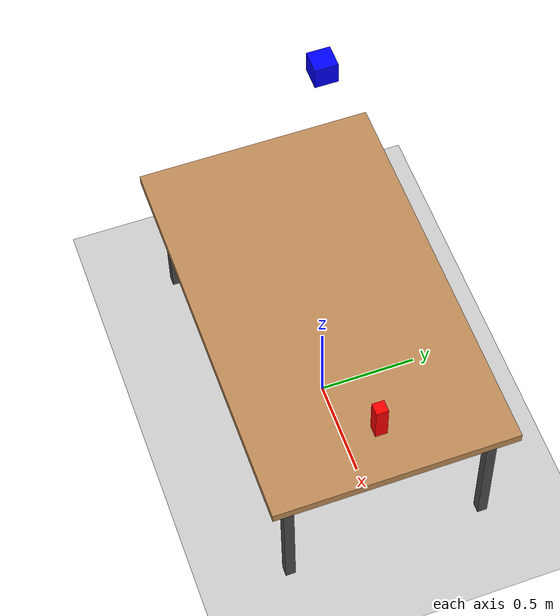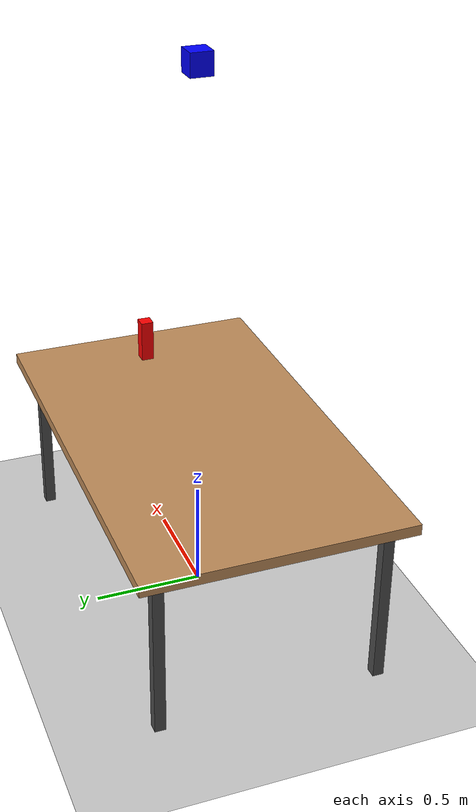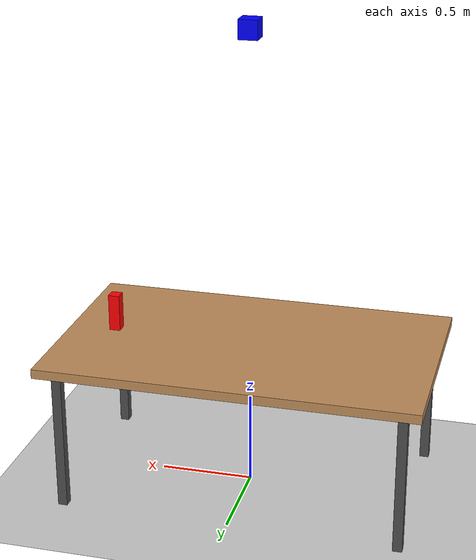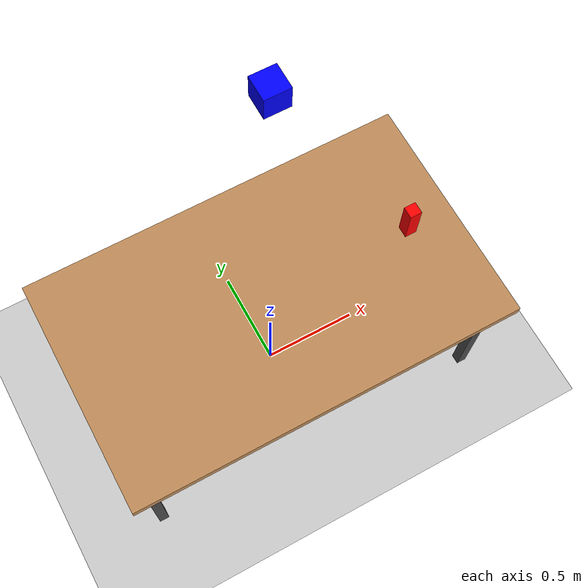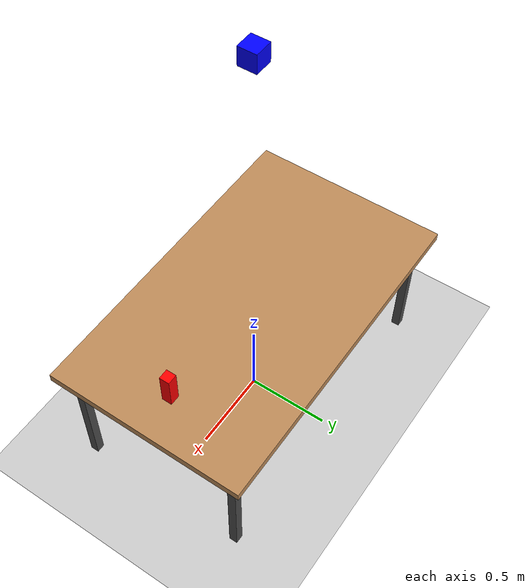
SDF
<?xml version="1.0" ?>
<sdf version="1.9">

  <world name="camera_world">

    <!-- Physics -->
    <physics type="ode">
      <max_step_size>0.001</max_step_size>
      <real_time_factor>1.0</real_time_factor>
    </physics>

    <!-- Core systems -->
    <plugin
      filename="gz-sim-physics-system"
      name="gz::sim::systems::Physics">
    </plugin>

    <plugin
      filename="gz-sim-user-commands-system"
      name="gz::sim::systems::UserCommands">
    </plugin>

    <plugin
      filename="gz-sim-scene-broadcaster-system"
      name="gz::sim::systems::SceneBroadcaster">
    </plugin>

    <!-- Sensors -->
    <plugin
      filename="gz-sim-sensors-system"
      name="gz::sim::systems::Sensors">
      <render_engine>ogre2</render_engine>
    </plugin>

    <!-- Sun -->
    <light type="directional" name="sun">
      <cast_shadows>true</cast_shadows>
      <pose>0 0 10 0 0 0</pose>
      <diffuse>0.8 0.8 0.8 1</diffuse>
      <specular>0.2 0.2 0.2 1</specular>
      <direction>-0.5 0.1 -0.9</direction>
    </light>

    <!-- Ground -->
    <model name="ground_plane">
      <static>true</static>

      <link name="link">

        <collision name="collision">
          <geometry>
            <plane>
              <normal>0 0 1</normal>
              <size>100 100</size>
            </plane>
          </geometry>
        </collision>

        <visual name="visual">
          <geometry>
            <plane>
              <normal>0 0 1</normal>
              <size>100 100</size>
            </plane>
          </geometry>

          <material>
            <ambient>0.8 0.8 0.8 1</ambient>
            <diffuse>0.8 0.8 0.8 1</diffuse>
          </material>

        </visual>

      </link>

    </model>

    <!-- TABLE -->
    <model name="table">

      <static>true</static>

      <pose>0 0 0 0 0 0</pose>

      <!-- TABLE TOP -->
      <link name="table_top">

        <pose>0 0 0.8 0 0 0</pose>

        <collision name="collision">

          <geometry>
            <box>
              <size>2.0 1.2 0.05</size>
            </box>
          </geometry>

        </collision>

        <visual name="visual">

          <geometry>
            <box>
              <size>2.0 1.2 0.05</size>
            </box>
          </geometry>

          <material>
            <ambient>0.75 0.55 0.35 1</ambient>
            <diffuse>0.75 0.55 0.35 1</diffuse>
          </material>

        </visual>

      </link>

      <!-- LEGS -->

      <link name="leg_1">
        <pose>0.9 0.5 0.4 0 0 0</pose>

        <collision name="collision">
          <geometry>
            <box>
              <size>0.05 0.05 0.8</size>
            </box>
          </geometry>
        </collision>

        <visual name="visual">
          <geometry>
            <box>
              <size>0.05 0.05 0.8</size>
            </box>
          </geometry>

          <material>
            <ambient>0.3 0.3 0.3 1</ambient>
            <diffuse>0.3 0.3 0.3 1</diffuse>
          </material>

        </visual>

      </link>

      <link name="leg_2">
        <pose>0.9 -0.5 0.4 0 0 0</pose>

        <collision name="collision">
          <geometry>
            <box>
              <size>0.05 0.05 0.8</size>
            </box>
          </geometry>
        </collision>

        <visual name="visual">
          <geometry>
            <box>
              <size>0.05 0.05 0.8</size>
            </box>
          </geometry>

          <material>
            <ambient>0.3 0.3 0.3 1</ambient>
            <diffuse>0.3 0.3 0.3 1</diffuse>
          </material>

        </visual>

      </link>

      <link name="leg_3">
        <pose>-0.9 0.5 0.4 0 0 0</pose>

        <collision name="collision">
          <geometry>
            <box>
              <size>0.05 0.05 0.8</size>
            </box>
          </geometry>
        </collision>

        <visual name="visual">
          <geometry>
            <box>
              <size>0.05 0.05 0.8</size>
            </box>
          </geometry>

          <material>
            <ambient>0.3 0.3 0.3 1</ambient>
            <diffuse>0.3 0.3 0.3 1</diffuse>
          </material>

        </visual>

      </link>

      <link name="leg_4">
        <pose>-0.9 -0.5 0.4 0 0 0</pose>

        <collision name="collision">
          <geometry>
            <box>
              <size>0.05 0.05 0.8</size>
            </box>
          </geometry>
        </collision>

        <visual name="visual">
          <geometry>
            <box>
              <size>0.05 0.05 0.8</size>
            </box>
          </geometry>

          <material>
            <ambient>0.3 0.3 0.3 1</ambient>
            <diffuse>0.3 0.3 0.3 1</diffuse>
          </material>

        </visual>

      </link>

    </model>

    <!-- CAMERA -->
    <model name="top_camera">

      <static>true</static>

      <pose>0 0 2.5 0 1.5707 1.5707</pose>

      <link name="camera_link">

        <visual name="camera_visual">

          <geometry>
            <box>
              <size>0.1 0.1 0.1</size>
            </box>
          </geometry>

          <material>
            <ambient>0 0 1 1</ambient>
            <diffuse>0 0 1 1</diffuse>
          </material>

        </visual>

        <sensor
          name="camera_sensor"
          type="camera">

          <always_on>true</always_on>

          <update_rate>30</update_rate>

          <visualize>true</visualize>

          <topic>/top_camera/image</topic>

          <camera name="camera">

            <horizontal_fov>1.047</horizontal_fov>

            <image>
              <width>640</width>
              <height>480</height>
              <format>R8G8B8</format>
            </image>

            <clip>
              <near>0.1</near>
              <far>100</far>
            </clip>

          </camera>

        </sensor>

      </link>

    </model>

    <!-- RED OBJECT — 6x6x20cm tall box, z = table(0.825) + half-height(0.10) = 0.925 -->
    <model name="box_object">

      <pose>0.75 0 0.925 0 0 0</pose>

      <link name="link">

        <inertial>
          <mass>0.2</mass>
        </inertial>

        <collision name="collision">
          <geometry>
            <box>
              <size>0.06 0.06 0.20</size>
            </box>
          </geometry>
        </collision>

        <visual name="visual">
          <geometry>
            <box>
              <size>0.06 0.06 0.20</size>
            </box>
          </geometry>

          <material>
            <ambient>1 0 0 1</ambient>
            <diffuse>1 0 0 1</diffuse>
          </material>

        </visual>

      </link>

    </model>

  </world>

</sdf>
